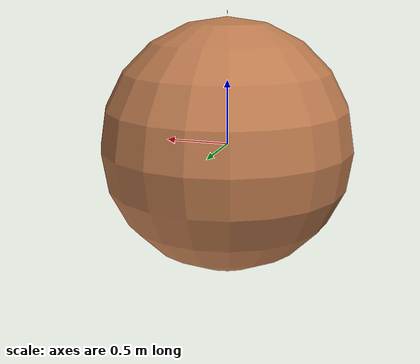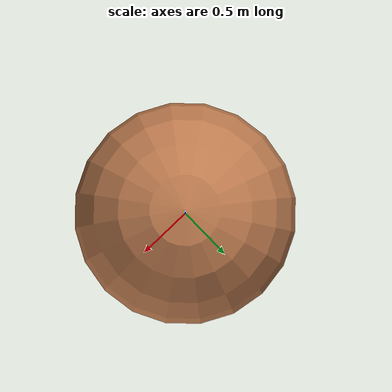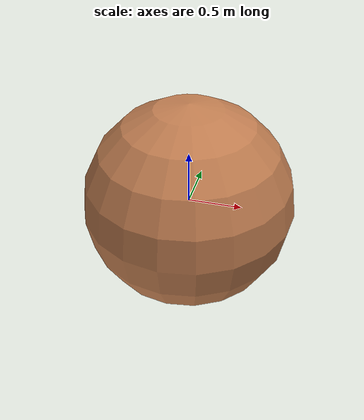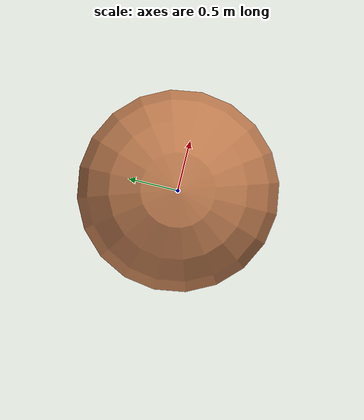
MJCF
<mujoco>
            <compiler angle="radian" autolimits="true" />
            <compiler meshdir="asset" texturedir="asset" assetdir="asset" />
            <option gravity="0 0 0" />
            <default class="main">
            <geom friction="0 0 0" solimp="0.9 1 0.001 0.01 20" solref="0.02 1" condim="1" />
        </default>

        <visual>
            <headlight diffuse="0.7 0.7 0.7" ambient="0.5 0.5 0.5" />
            <global offwidth="1920" offheight="1080" />
        </visual>

        <asset>
            <texture type="skybox" builtin="gradient" rgb1="0 0.5 0.7" rgb2="0 0 0" width="512" height="512" />
            <texture type="2d" name="checks1" builtin="checker" rgb1="1 1 1" rgb2="0 0 0" width="256" height="256" />
            <material name="test_color" texture="checks1" texuniform="true" texrepeat="2 2" />
            <material name="reflectance" reflectance=".4" />
            <texture name="grid" type="2d" builtin="checker" width="512" height="512" rgb1="1.0 0.6235 0.1098" rgb2="1.0 0.749 0.4118" />
            <texture name="white-texture-background" type="2d" file="/home/aryansatpathy/DevStuff/cmu/PHO/sim/geom_sources/fixed_sources/rocket/rocket.white-texture-background.png" content_type="image/png" />
            <material name="pulley" texture="grid" texrepeat="2 2" texuniform="true" />
            <mesh name="rocket.obj9" scale="0.001 0.001 0.001" file="/home/aryansatpathy/DevStuff/cmu/PHO/sim/geom_sources/fixed_sources/rocket/rocket.obj9.obj">
</mesh>
<mesh name="rocket.obj8" scale="0.001 0.001 0.001" file="/home/aryansatpathy/DevStuff/cmu/PHO/sim/geom_sources/fixed_sources/rocket/rocket.obj8.obj">
</mesh>
<mesh name="rocket.obj11" scale="0.001 0.001 0.001" file="/home/aryansatpathy/DevStuff/cmu/PHO/sim/geom_sources/fixed_sources/rocket/rocket.obj11.obj">
</mesh>
<mesh name="rocket.obj1" scale="0.001 0.001 0.001" file="/home/aryansatpathy/DevStuff/cmu/PHO/sim/geom_sources/fixed_sources/rocket/rocket.obj1.obj">
</mesh>
<material name="rocket.obj6" rgba="0.0000 0.0000 0.0000 1.0000" specular="0.5000" shininess="1.0000" emission="0.0000" />
<material name="rocket.obj8" rgba="1.0000 1.0000 1.0000 1.0000" specular="0.5000" shininess="1.0000" emission="0.0000" />
<mesh name="rocket.obj4" scale="0.001 0.001 0.001" file="/home/aryansatpathy/DevStuff/cmu/PHO/sim/geom_sources/fixed_sources/rocket/rocket.obj4.obj">
</mesh>
<mesh name="rocket.obj5" scale="0.001 0.001 0.001" file="/home/aryansatpathy/DevStuff/cmu/PHO/sim/geom_sources/fixed_sources/rocket/rocket.obj5.obj">
</mesh>
<material name="rocket.obj11" rgba="0.0016 0.0042 0.8000 1.0000" specular="0.5000" shininess="1.0000" emission="0.0000" />
<material name="rocket.obj1" rgba="0.0000 0.0000 0.0000 1.0000" specular="0.5000" shininess="1.0000" emission="0.0000" />
<material name="rocket.obj13" rgba="0.0000 0.0000 0.0000 1.0000" specular="0.5000" shininess="1.0000" emission="0.0000" />
<mesh name="rocket.obj12" scale="0.001 0.001 0.001" file="/home/aryansatpathy/DevStuff/cmu/PHO/sim/geom_sources/fixed_sources/rocket/rocket.obj12.obj">
</mesh>
<mesh name="rocket.obj13" scale="0.001 0.001 0.001" file="/home/aryansatpathy/DevStuff/cmu/PHO/sim/geom_sources/fixed_sources/rocket/rocket.obj13.obj">
</mesh>
<material name="rocket.obj3" rgba="0.0000 0.0000 0.0000 1.0000" specular="0.5000" shininess="1.0000" emission="0.0000" />
<material name="rocket.obj12" rgba="0.8000 0.0070 0.0000 1.0000" specular="0.5000" shininess="1.0000" emission="0.0000" />
<material name="rocket.obj7" rgba="1.0000 0.1724 0.0441 1.0000" specular="0.5000" shininess="1.0000" emission="0.0000" />
<material name="rocket.obj5" rgba="0.8000 0.8000 0.8000 1.0000" specular="0.5000" shininess="1.0000" emission="0.0000" />
<mesh name="rocket.obj7" scale="0.001 0.001 0.001" file="/home/aryansatpathy/DevStuff/cmu/PHO/sim/geom_sources/fixed_sources/rocket/rocket.obj7.obj">
</mesh>
<material name="rocket.obj9" rgba="0.8000 0.8000 0.8000 1.0000" specular="0.5000" shininess="1.0000" emission="0.0000" />
<material name="rocket.obj10" texture="white-texture-background" rgba="1.0000 1.0000 1.0000 1.0000" specular="0.5000" shininess="1.0000" emission="0.0000" />
<mesh name="rocket.obj6" scale="0.001 0.001 0.001" file="/home/aryansatpathy/DevStuff/cmu/PHO/sim/geom_sources/fixed_sources/rocket/rocket.obj6.obj">
</mesh>
<mesh name="rocket.obj3" scale="0.001 0.001 0.001" file="/home/aryansatpathy/DevStuff/cmu/PHO/sim/geom_sources/fixed_sources/rocket/rocket.obj3.obj">
</mesh>
<material name="rocket.obj2" rgba="0.3108 0.3108 0.3108 1.0000" specular="0.5000" shininess="1.0000" emission="0.0000" />
<material name="rocket.obj4" rgba="0.8000 0.8000 0.8000 1.0000" specular="0.5000" shininess="1.0000" emission="0.0000" />
<mesh name="rocket.obj2" scale="0.001 0.001 0.001" file="/home/aryansatpathy/DevStuff/cmu/PHO/sim/geom_sources/fixed_sources/rocket/rocket.obj2.obj">
</mesh>
<mesh name="rocket.obj10" scale="0.001 0.001 0.001" file="/home/aryansatpathy/DevStuff/cmu/PHO/sim/geom_sources/fixed_sources/rocket/rocket.obj10.obj">
</mesh>

        </asset>
        <worldbody><body name="rocketentity_0.rocket" pos="0.0 0.0 1.006" quat="1.0 0.0 0.0 0.0"><joint name="rocketentity_0.rocket.joint" type="free" axis="0 0 0" pos="0 0 0" />
<body name="rocketentity_0.rocket.rocket_geom" pos="0 0 0" quat="0 0 0.7071068 0.7071068"><geom name="rocketentity_0.rocket.rocket_geom.geom0" type="mesh" pos="0 0 0" size="1 1 1" material="rocket.obj1" mass="0" quat="1 0 0 0" mesh="rocket.obj1" contype="0" conaffinity="0" />
<geom name="rocketentity_0.rocket.rocket_geom.geom1" type="mesh" pos="0 0 0" size="1 1 1" material="rocket.obj2" mass="0" quat="1 0 0 0" mesh="rocket.obj2" contype="0" conaffinity="0" />
<geom name="rocketentity_0.rocket.rocket_geom.geom2" type="mesh" pos="0 0 0" size="1 1 1" material="rocket.obj3" mass="0" quat="1 0 0 0" mesh="rocket.obj3" contype="0" conaffinity="0" />
<geom name="rocketentity_0.rocket.rocket_geom.geom3" type="mesh" pos="0 0 0" size="1 1 1" material="rocket.obj4" mass="0" quat="1 0 0 0" mesh="rocket.obj4" contype="0" conaffinity="0" />
<geom name="rocketentity_0.rocket.rocket_geom.geom4" type="mesh" pos="0 0 0" size="1 1 1" material="rocket.obj5" mass="0" quat="1 0 0 0" mesh="rocket.obj5" contype="0" conaffinity="0" />
<geom name="rocketentity_0.rocket.rocket_geom.geom5" type="mesh" pos="0 0 0" size="1 1 1" material="rocket.obj6" mass="0" quat="1 0 0 0" mesh="rocket.obj6" contype="0" conaffinity="0" />
<geom name="rocketentity_0.rocket.rocket_geom.geom6" type="mesh" pos="0 0 0" size="1 1 1" material="rocket.obj7" mass="0" quat="1 0 0 0" mesh="rocket.obj7" contype="0" conaffinity="0" />
<geom name="rocketentity_0.rocket.rocket_geom.geom7" type="mesh" pos="0 0 0" size="1 1 1" material="rocket.obj8" mass="0" quat="1 0 0 0" mesh="rocket.obj8" contype="0" conaffinity="0" />
<geom name="rocketentity_0.rocket.rocket_geom.geom8" type="mesh" pos="0 0 0" size="1 1 1" material="rocket.obj9" mass="0" quat="1 0 0 0" mesh="rocket.obj9" contype="0" conaffinity="0" />
<geom name="rocketentity_0.rocket.rocket_geom.geom9" type="mesh" pos="0 0 0" size="1 1 1" material="rocket.obj10" mass="0" quat="1 0 0 0" mesh="rocket.obj10" contype="0" conaffinity="0" />
<geom name="rocketentity_0.rocket.rocket_geom.geom10" type="mesh" pos="0 0 0" size="1 1 1" material="rocket.obj11" mass="0" quat="1 0 0 0" mesh="rocket.obj11" contype="0" conaffinity="0" />
<geom name="rocketentity_0.rocket.rocket_geom.geom11" type="mesh" pos="0 0 0" size="1 1 1" material="rocket.obj12" mass="0" quat="1 0 0 0" mesh="rocket.obj12" contype="0" conaffinity="0" />
<geom name="rocketentity_0.rocket.rocket_geom.geom12" type="mesh" pos="0 0 0" size="1 1 1" material="rocket.obj13" mass="0" quat="1 0 0 0" mesh="rocket.obj13" contype="0" conaffinity="0" />
<inertial pos="0.0 0.0 0.0" mass="0.0" diaginertia="0.0 0.0 0.0" />
</body>
<body name="rocketentity_0.rocket.collision_geom" pos="0 0 0.015" quat="1 0 0 0"><geom name="rocketentity_0.rocket.collision_geom.geom" type="cylinder" pos="0 0 0" size="0.002 0.015" material="pulley" rgba="0 0 0 0" mass="0.109" quat="0 0 0 1" contype="1" conaffinity="1" />
</body>
</body>
<body name="rocketentity_0.planet" pos="0.0 0.0 0.0" quat="1.0 0.0 0.0 0.0"><geom name="rocketentity_0.planet.geom" type="sphere" pos="0 0 0" size="0.98588" material="reflectance" rgba="0.7487201153855946 0.48649569803143317 0.3113726846344439 1.0" mass="2165.36" quat="0 0 0 1" contype="1" conaffinity="1" />
<site name="rocketentity_0.planet.site" pos="0 0 0" quat="1.0 -0.0 -0.0 -0.0" />
<site name="rocketentity_0.planet.center_site" pos="0 0 0" quat="1.0 -0.0 -0.0 -0.0" />
</body>
</worldbody><sensor>

        </sensor>
        <custom>

        </custom>
        <contact>

        </contact>
        <actuator>

        </actuator>
    </mujoco>
